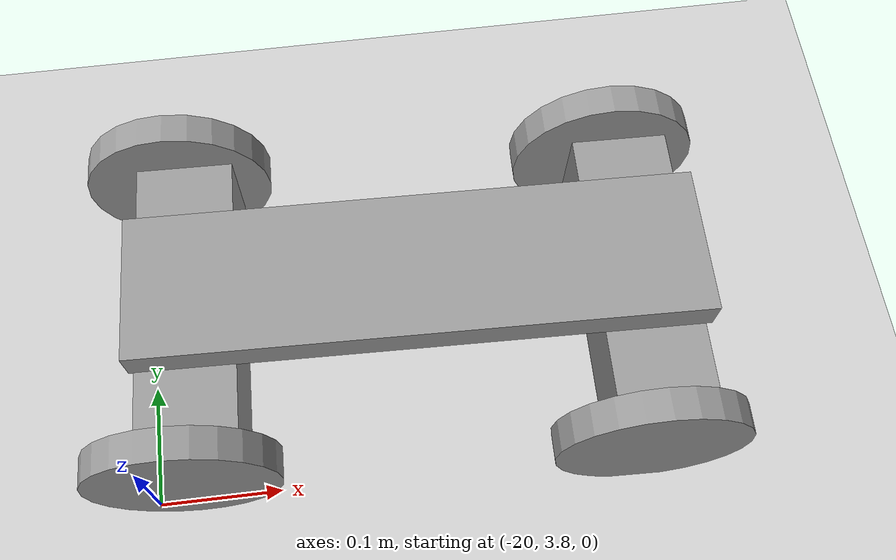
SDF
<sdf version="1.6">
 <world name="default">
  <model name="ground_plane">
   <static>1</static>
   <link name="link">
    <collision name="collision">
     <geometry><plane><normal>0 0 1</normal><size>100 100</size></plane></geometry>
     <surface><friction><ode><mu>100</mu><mu2>50</mu2></ode></friction></surface>
    </collision>
    <visual name="visual">
     <cast_shadows>0</cast_shadows>
     <geometry><plane><normal>0 0 1</normal><size>100 100</size></plane></geometry>
     <material>
      <script><uri>file://media/materials/scripts/gazebo.material</uri><name>Gazebo/Grey</name></script>
     </material>
    </visual>
   </link>
  </model>
  <model name="simple4wheel">
   <link name="link_0">
    <pose>0.207024 -0.003796 0.091671 0 -0 0</pose>
    <inertial>
     <mass>2</mass>
     <inertia>
      <ixx>1.72e-06</ixx>
      <ixy>0</ixy>
      <ixz>0</ixz>
      <iyy>2.368e-05</iyy>
      <iyz>0</iyz>
      <izz>2.522e-05</izz>
     </inertia>
    </inertial>
    <visual name="visual">
     <geometry><box><size>0.444653 0.117044 0.027544</size></box></geometry>
     <material>
      <lighting>1</lighting>
      <script><uri>file://media/materials/scripts/gazebo.material</uri><name>Gazebo/Grey</name></script>
      <ambient>0.3 0.3 0.3 1</ambient>
      <diffuse>0.7 0.7 0.7 1</diffuse>
      <specular>0.01 0.01 0.01 1</specular>
      <emissive>0 0 0 1</emissive>
      <shader type="vertex"><normal_map>__default__</normal_map></shader>
     </material>
    </visual>
    <collision name="collision">
     <geometry><box><size>0.444653 0.117044 0.027544</size></box></geometry>
     <surface>
      <friction>
       <ode><mu>1</mu><mu2>1</mu2><fdir1>0 0 0</fdir1><slip1>0</slip1><slip2>0</slip2></ode>
       <torsional>
        <coefficient>1</coefficient>
        <patch_radius>0</patch_radius>
        <surface_radius>0</surface_radius>
        <use_patch_radius>1</use_patch_radius>
        <ode><slip>0</slip></ode>
       </torsional>
      </friction>
      <bounce><restitution_coefficient>0</restitution_coefficient><threshold>1e+06</threshold></bounce>
      <contact>
       <collide_without_contact>0</collide_without_contact>
       <collide_without_contact_bitmask>1</collide_without_contact_bitmask>
       <collide_bitmask>1</collide_bitmask>
       <ode>
        <soft_cfm>0</soft_cfm>
        <soft_erp>0.2</soft_erp>
        <kp>1e+13</kp>
        <kd>1</kd>
        <max_vel>0.01</max_vel>
        <min_depth>0</min_depth>
       </ode>
       <bullet>
        <split_impulse>1</split_impulse>
        <split_impulse_penetration_threshold>-0.01</split_impulse_penetration_threshold>
        <soft_cfm>0</soft_cfm>
        <soft_erp>0.2</soft_erp>
        <kp>1e+13</kp>
        <kd>1</kd>
       </bullet>
      </contact>
     </surface>
    </collision>
   </link>
   <link name="link_1">
    <pose>0.382337 -0.003413 0.072755 0 -0 0</pose>
    <inertial>
     <mass>6.39095e-05</mass>
     <inertia>
      <ixx>2.5196e-08</ixx>
      <ixy>0</ixy>
      <ixz>0</ixz>
      <iyy>2.5196e-08</iyy>
      <iyz>0</iyz>
      <izz>4.92471e-08</izz>
     </inertia>
    </inertial>
    <visual name="visual">
     <geometry><cylinder><radius>0.0392577</radius><length>0.0103325</length></cylinder></geometry>
     <material>
      <lighting>1</lighting>
      <script><uri>file://media/materials/scripts/gazebo.material</uri><name>Gazebo/Grey</name></script>
      <ambient>0.3 0.3 0.3 1</ambient>
      <diffuse>0.7 0.7 0.7 1</diffuse>
      <specular>0.01 0.01 0.01 1</specular>
      <emissive>0 0 0 1</emissive>
     </material>
    </visual>
    <collision name="collision">
     <geometry><cylinder><radius>0.039258</radius><length>0.010332</length></cylinder></geometry>
     <surface>
      <friction>
       <ode><mu>1</mu><mu2>1</mu2><fdir1>0 0 0</fdir1><slip1>0</slip1><slip2>0</slip2></ode>
       <torsional>
        <coefficient>1</coefficient>
        <patch_radius>0</patch_radius>
        <surface_radius>0</surface_radius>
        <use_patch_radius>1</use_patch_radius>
        <ode><slip>0</slip></ode>
       </torsional>
      </friction>
      <bounce><restitution_coefficient>0</restitution_coefficient><threshold>1e+06</threshold></bounce>
      <contact>
       <collide_without_contact>0</collide_without_contact>
       <collide_without_contact_bitmask>1</collide_without_contact_bitmask>
       <collide_bitmask>1</collide_bitmask>
       <ode>
        <soft_cfm>0</soft_cfm>
        <soft_erp>0.2</soft_erp>
        <kp>1e+13</kp>
        <kd>1</kd>
        <max_vel>0.01</max_vel>
        <min_depth>0</min_depth>
       </ode>
       <bullet>
        <split_impulse>1</split_impulse>
        <split_impulse_penetration_threshold>-0.01</split_impulse_penetration_threshold>
        <soft_cfm>0</soft_cfm>
        <soft_erp>0.2</soft_erp>
        <kp>1e+13</kp>
        <kd>1</kd>
       </bullet>
      </contact>
     </surface>
    </collision>
   </link>
   <model name="wheel">
    <link name="link_1_clone">
     <pose>0.977304 -0.011272 0.197727 0 -0 0</pose>
     <inertial>
      <mass>0.665497</mass>
      <inertia>
       <ixx>0.00328415</ixx>
       <ixy>0</ixy>
       <ixz>0</ixz>
       <iyy>0.00382362</iyy>
       <iyz>0</iyz>
       <izz>0.00114194</izz>
      </inertia>
     </inertial>
     <visual name="visual">
      <geometry><box><size>0.077886 0.233056 0.073342</size></box></geometry>
      <material>
       <lighting>1</lighting>
       <script><uri>file://media/materials/scripts/gazebo.material</uri><name>Gazebo/Grey</name></script>
       <ambient>0.3 0.3 0.3 1</ambient>
       <diffuse>0.7 0.7 0.7 1</diffuse>
       <specular>0.01 0.01 0.01 1</specular>
       <emissive>0 0 0 1</emissive>
       <shader type="vertex"><normal_map>__default__</normal_map></shader>
      </material>
     </visual>
     <collision name="collision">
      <geometry><box><size>0.077886 0.233056 0.073342</size></box></geometry>
      <surface>
       <friction>
        <ode><mu>1</mu><mu2>1</mu2><fdir1>0 0 0</fdir1><slip1>0</slip1><slip2>0</slip2></ode>
        <torsional>
         <coefficient>1</coefficient>
         <patch_radius>0</patch_radius>
         <surface_radius>0</surface_radius>
         <use_patch_radius>1</use_patch_radius>
         <ode><slip>0</slip></ode>
        </torsional>
       </friction>
       <bounce><restitution_coefficient>0</restitution_coefficient><threshold>1e+06</threshold></bounce>
       <contact>
        <collide_without_contact>0</collide_without_contact>
        <collide_without_contact_bitmask>1</collide_without_contact_bitmask>
        <collide_bitmask>1</collide_bitmask>
        <ode>
         <soft_cfm>0</soft_cfm>
         <soft_erp>0.2</soft_erp>
         <kp>1e+13</kp>
         <kd>1</kd>
         <max_vel>0.01</max_vel>
         <min_depth>0</min_depth>
        </ode>
        <bullet>
         <split_impulse>1</split_impulse>
         <split_impulse_penetration_threshold>-0.01</split_impulse_penetration_threshold>
         <soft_cfm>0</soft_cfm>
         <soft_erp>0.2</soft_erp>
         <kp>1e+13</kp>
         <kd>1</kd>
        </bullet>
       </contact>
      </surface>
     </collision>
    </link>
    <link name="link_2_clone_0">
     <pose>0.96771 0.116414 0.19965 -1.5707 -0 -0</pose>
     <inertial>
      <mass>0.113164</mass>
      <inertia>
       <ixx>0.00447943</ixx>
       <ixy>0</ixy>
       <ixz>0</ixz>
       <iyy>0.00447943</iyy>
       <iyz>0</iyz>
       <izz>0.00824855</izz>
      </inertia>
     </inertial>
     <visual name="visual">
      <geometry><cylinder><radius>0.0763658</radius><length>0.0244675</length></cylinder></geometry>
      <material>
       <lighting>1</lighting>
       <script><uri>file://media/materials/scripts/gazebo.material</uri><name>Gazebo/Grey</name></script>
       <ambient>0.3 0.3 0.3 1</ambient>
       <diffuse>0.7 0.7 0.7 1</diffuse>
       <specular>0.01 0.01 0.01 1</specular>
       <emissive>0 0 0 1</emissive>
       <shader type="vertex"><normal_map>__default__</normal_map></shader>
      </material>
     </visual>
     <collision name="collision">
      <geometry><cylinder><radius>0.076366</radius><length>0.024468</length></cylinder></geometry>
      <surface>
       <friction>
        <ode><mu>1</mu><mu2>1</mu2><fdir1>0 0 0</fdir1><slip1>0</slip1><slip2>0</slip2></ode>
        <torsional>
         <coefficient>1</coefficient>
         <patch_radius>0</patch_radius>
         <surface_radius>0</surface_radius>
         <use_patch_radius>1</use_patch_radius>
         <ode><slip>0</slip></ode>
        </torsional>
       </friction>
       <bounce><restitution_coefficient>0</restitution_coefficient><threshold>1e+06</threshold></bounce>
       <contact>
        <collide_without_contact>0</collide_without_contact>
        <collide_without_contact_bitmask>1</collide_without_contact_bitmask>
        <collide_bitmask>1</collide_bitmask>
        <ode>
         <soft_cfm>0</soft_cfm>
         <soft_erp>0.2</soft_erp>
         <kp>1e+13</kp>
         <kd>1</kd>
         <max_vel>0.01</max_vel>
         <min_depth>0</min_depth>
        </ode>
        <bullet>
         <split_impulse>1</split_impulse>
         <split_impulse_penetration_threshold>-0.01</split_impulse_penetration_threshold>
         <soft_cfm>0</soft_cfm>
         <soft_erp>0.2</soft_erp>
         <kp>1e+13</kp>
         <kd>1</kd>
        </bullet>
       </contact>
      </surface>
     </collision>
    </link>
    <link name="link_2_clone_clone">
     <pose>0.967654 -0.140179 0.196376 1.5707 -0 0</pose>
     <inertial>
      <mass>0.147919</mass>
      <inertia>
       <ixx>0.00627331</ixx>
       <ixy>0</ixy>
       <ixz>0</ixz>
       <iyy>0.00627331</iyy>
       <iyz>0</iyz>
       <izz>0.0110311</izz>
      </inertia>
     </inertial>
     <visual name="visual">
      <geometry><cylinder><radius>0.076366</radius><length>0.024779</length></cylinder></geometry>
      <material>
       <lighting>1</lighting>
       <script><uri>file://media/materials/scripts/gazebo.material</uri><name>Gazebo/Grey</name></script>
       <ambient>0.3 0.3 0.3 1</ambient>
       <diffuse>0.7 0.7 0.7 1</diffuse>
       <specular>0.01 0.01 0.01 1</specular>
       <emissive>0 0 0 1</emissive>
       <shader type="vertex"><normal_map>__default__</normal_map></shader>
      </material>
     </visual>
     <collision name="collision">
      <geometry><cylinder><radius>0.076366</radius><length>0.024779</length></cylinder></geometry>
      <surface>
       <friction>
        <ode><mu>1</mu><mu2>1</mu2><fdir1>0 0 0</fdir1><slip1>0</slip1><slip2>0</slip2></ode>
        <torsional>
         <coefficient>1</coefficient>
         <patch_radius>0</patch_radius>
         <surface_radius>0</surface_radius>
         <use_patch_radius>1</use_patch_radius>
         <ode><slip>0</slip></ode>
        </torsional>
       </friction>
       <bounce><restitution_coefficient>0</restitution_coefficient><threshold>1e+06</threshold></bounce>
       <contact>
        <collide_without_contact>0</collide_without_contact>
        <collide_without_contact_bitmask>1</collide_without_contact_bitmask>
        <collide_bitmask>1</collide_bitmask>
        <ode>
         <soft_cfm>0</soft_cfm>
         <soft_erp>0.2</soft_erp>
         <kp>1e+13</kp>
         <kd>1</kd>
         <max_vel>0.01</max_vel>
         <min_depth>0</min_depth>
        </ode>
        <bullet>
         <split_impulse>1</split_impulse>
         <split_impulse_penetration_threshold>-0.01</split_impulse_penetration_threshold>
         <soft_cfm>0</soft_cfm>
         <soft_erp>0.2</soft_erp>
         <kp>1e+13</kp>
         <kd>1</kd>
        </bullet>
       </contact>
      </surface>
     </collision>
    </link>
    <joint name="link_1_clone_JOINT_14" type="revolute">
     <parent>link_1_clone</parent>
     <child>link_2_clone_clone</child>
     <axis>
      <xyz>0 0 1</xyz>
      <use_parent_model_frame>0</use_parent_model_frame>
      <limit>
       <lower>-1.79769e+308</lower>
       <upper>1.79769e+308</upper>
       <effort>-1</effort>
       <velocity>-1</velocity>
      </limit>
      <dynamics>
       <spring_reference>0</spring_reference>
       <spring_stiffness>0</spring_stiffness>
       <damping>0</damping>
       <friction>0</friction>
      </dynamics>
     </axis>
     <physics>
      <ode><limit><cfm>0</cfm><erp>0.2</erp></limit><suspension><cfm>0</cfm><erp>0.2</erp></suspension></ode>
     </physics>
    </joint>
    <joint name="link_1_clone_JOINT_15" type="revolute">
     <parent>link_1_clone</parent>
     <child>link_2_clone_0</child>
     <axis>
      <xyz>0 0 1</xyz>
      <use_parent_model_frame>0</use_parent_model_frame>
      <limit>
       <lower>-1.79769e+308</lower>
       <upper>1.79769e+308</upper>
       <effort>-1</effort>
       <velocity>-1</velocity>
      </limit>
      <dynamics>
       <spring_reference>0</spring_reference>
       <spring_stiffness>0</spring_stiffness>
       <damping>0</damping>
       <friction>0</friction>
      </dynamics>
     </axis>
     <physics>
      <ode><limit><cfm>0</cfm><erp>0.2</erp></limit><suspension><cfm>0</cfm><erp>0.2</erp></suspension></ode>
     </physics>
    </joint>
    <static>0</static>
    <pose>-0.589361 0.007286 -0.163823 0 -0 0</pose>
   </model>
   <model name="wheel_0">
    <link name="link_1_clone">
     <pose>0.977304 -0.011272 0.197727 0 -0 0</pose>
     <inertial>
      <mass>0.665497</mass>
      <inertia>
       <ixx>0.00328415</ixx>
       <ixy>0</ixy>
       <ixz>0</ixz>
       <iyy>0.00382362</iyy>
       <iyz>0</iyz>
       <izz>0.00114194</izz>
      </inertia>
     </inertial>
     <visual name="visual">
      <geometry><box><size>0.077886 0.233056 0.073342</size></box></geometry>
      <material>
       <lighting>1</lighting>
       <script><uri>file://media/materials/scripts/gazebo.material</uri><name>Gazebo/Grey</name></script>
       <ambient>0.3 0.3 0.3 1</ambient>
       <diffuse>0.7 0.7 0.7 1</diffuse>
       <specular>0.01 0.01 0.01 1</specular>
       <emissive>0 0 0 1</emissive>
       <shader type="vertex"><normal_map>__default__</normal_map></shader>
      </material>
     </visual>
     <collision name="collision">
      <geometry><box><size>0.077886 0.233056 0.073342</size></box></geometry>
      <surface>
       <friction>
        <ode><mu>1</mu><mu2>1</mu2><fdir1>0 0 0</fdir1><slip1>0</slip1><slip2>0</slip2></ode>
        <torsional>
         <coefficient>1</coefficient>
         <patch_radius>0</patch_radius>
         <surface_radius>0</surface_radius>
         <use_patch_radius>1</use_patch_radius>
         <ode><slip>0</slip></ode>
        </torsional>
       </friction>
       <bounce><restitution_coefficient>0</restitution_coefficient><threshold>1e+06</threshold></bounce>
       <contact>
        <collide_without_contact>0</collide_without_contact>
        <collide_without_contact_bitmask>1</collide_without_contact_bitmask>
        <collide_bitmask>1</collide_bitmask>
        <ode>
         <soft_cfm>0</soft_cfm>
         <soft_erp>0.2</soft_erp>
         <kp>1e+13</kp>
         <kd>1</kd>
         <max_vel>0.01</max_vel>
         <min_depth>0</min_depth>
        </ode>
        <bullet>
         <split_impulse>1</split_impulse>
         <split_impulse_penetration_threshold>-0.01</split_impulse_penetration_threshold>
         <soft_cfm>0</soft_cfm>
         <soft_erp>0.2</soft_erp>
         <kp>1e+13</kp>
         <kd>1</kd>
        </bullet>
       </contact>
      </surface>
     </collision>
    </link>
    <link name="link_2_clone_0">
     <pose>0.96771 0.116414 0.19965 -1.5707 -0 -0</pose>
     <inertial>
      <mass>0.113164</mass>
      <inertia>
       <ixx>0.00447943</ixx>
       <ixy>0</ixy>
       <ixz>0</ixz>
       <iyy>0.00447943</iyy>
       <iyz>0</iyz>
       <izz>0.00824855</izz>
      </inertia>
     </inertial>
     <visual name="visual">
      <geometry><cylinder><radius>0.0763658</radius><length>0.0244675</length></cylinder></geometry>
      <material>
       <lighting>1</lighting>
       <script><uri>file://media/materials/scripts/gazebo.material</uri><name>Gazebo/Grey</name></script>
       <ambient>0.3 0.3 0.3 1</ambient>
       <diffuse>0.7 0.7 0.7 1</diffuse>
       <specular>0.01 0.01 0.01 1</specular>
       <emissive>0 0 0 1</emissive>
       <shader type="vertex"><normal_map>__default__</normal_map></shader>
      </material>
     </visual>
     <collision name="collision">
      <geometry><cylinder><radius>0.076366</radius><length>0.024468</length></cylinder></geometry>
      <surface>
       <friction>
        <ode><mu>1</mu><mu2>1</mu2><fdir1>0 0 0</fdir1><slip1>0</slip1><slip2>0</slip2></ode>
        <torsional>
         <coefficient>1</coefficient>
         <patch_radius>0</patch_radius>
         <surface_radius>0</surface_radius>
         <use_patch_radius>1</use_patch_radius>
         <ode><slip>0</slip></ode>
        </torsional>
       </friction>
       <bounce><restitution_coefficient>0</restitution_coefficient><threshold>1e+06</threshold></bounce>
       <contact>
        <collide_without_contact>0</collide_without_contact>
        <collide_without_contact_bitmask>1</collide_without_contact_bitmask>
        <collide_bitmask>1</collide_bitmask>
        <ode>
         <soft_cfm>0</soft_cfm>
         <soft_erp>0.2</soft_erp>
         <kp>1e+13</kp>
         <kd>1</kd>
         <max_vel>0.01</max_vel>
         <min_depth>0</min_depth>
        </ode>
        <bullet>
         <split_impulse>1</split_impulse>
         <split_impulse_penetration_threshold>-0.01</split_impulse_penetration_threshold>
         <soft_cfm>0</soft_cfm>
         <soft_erp>0.2</soft_erp>
         <kp>1e+13</kp>
         <kd>1</kd>
        </bullet>
       </contact>
      </surface>
     </collision>
    </link>
    <link name="link_2_clone_clone">
     <pose>0.967654 -0.140179 0.196376 1.5707 -0 0</pose>
     <inertial>
      <mass>0.147919</mass>
      <inertia>
       <ixx>0.00627331</ixx>
       <ixy>0</ixy>
       <ixz>0</ixz>
       <iyy>0.00627331</iyy>
       <iyz>0</iyz>
       <izz>0.0110311</izz>
      </inertia>
     </inertial>
     <visual name="visual">
      <geometry><cylinder><radius>0.076366</radius><length>0.024779</length></cylinder></geometry>
      <material>
       <lighting>1</lighting>
       <script><uri>file://media/materials/scripts/gazebo.material</uri><name>Gazebo/Grey</name></script>
       <ambient>0.3 0.3 0.3 1</ambient>
       <diffuse>0.7 0.7 0.7 1</diffuse>
       <specular>0.01 0.01 0.01 1</specular>
       <emissive>0 0 0 1</emissive>
       <shader type="vertex"><normal_map>__default__</normal_map></shader>
      </material>
     </visual>
     <collision name="collision">
      <geometry><cylinder><radius>0.076366</radius><length>0.024779</length></cylinder></geometry>
      <surface>
       <friction>
        <ode><mu>1</mu><mu2>1</mu2><fdir1>0 0 0</fdir1><slip1>0</slip1><slip2>0</slip2></ode>
        <torsional>
         <coefficient>1</coefficient>
         <patch_radius>0</patch_radius>
         <surface_radius>0</surface_radius>
         <use_patch_radius>1</use_patch_radius>
         <ode><slip>0</slip></ode>
        </torsional>
       </friction>
       <bounce><restitution_coefficient>0</restitution_coefficient><threshold>1e+06</threshold></bounce>
       <contact>
        <collide_without_contact>0</collide_without_contact>
        <collide_without_contact_bitmask>1</collide_without_contact_bitmask>
        <collide_bitmask>1</collide_bitmask>
        <ode>
         <soft_cfm>0</soft_cfm>
         <soft_erp>0.2</soft_erp>
         <kp>1e+13</kp>
         <kd>1</kd>
         <max_vel>0.01</max_vel>
         <min_depth>0</min_depth>
        </ode>
        <bullet>
         <split_impulse>1</split_impulse>
         <split_impulse_penetration_threshold>-0.01</split_impulse_penetration_threshold>
         <soft_cfm>0</soft_cfm>
         <soft_erp>0.2</soft_erp>
         <kp>1e+13</kp>
         <kd>1</kd>
        </bullet>
       </contact>
      </surface>
     </collision>
    </link>
    <joint name="link_1_clone_JOINT_14" type="revolute">
     <parent>link_1_clone</parent>
     <child>link_2_clone_clone</child>
     <axis>
      <xyz>0 0 1</xyz>
      <use_parent_model_frame>0</use_parent_model_frame>
      <limit>
       <lower>-1.79769e+308</lower>
       <upper>1.79769e+308</upper>
       <effort>-1</effort>
       <velocity>-1</velocity>
      </limit>
      <dynamics>
       <spring_reference>0</spring_reference>
       <spring_stiffness>0</spring_stiffness>
       <damping>0</damping>
       <friction>0</friction>
      </dynamics>
     </axis>
     <physics>
      <ode><limit><cfm>0</cfm><erp>0.2</erp></limit><suspension><cfm>0</cfm><erp>0.2</erp></suspension></ode>
     </physics>
    </joint>
    <joint name="link_1_clone_JOINT_15" type="revolute">
     <parent>link_1_clone</parent>
     <child>link_2_clone_0</child>
     <axis>
      <xyz>0 0 1</xyz>
      <use_parent_model_frame>0</use_parent_model_frame>
      <limit>
       <lower>-1.79769e+308</lower>
       <upper>1.79769e+308</upper>
       <effort>-1</effort>
       <velocity>-1</velocity>
      </limit>
      <dynamics>
       <spring_reference>0</spring_reference>
       <spring_stiffness>0</spring_stiffness>
       <damping>0</damping>
       <friction>0</friction>
      </dynamics>
     </axis>
     <physics>
      <ode><limit><cfm>0</cfm><erp>0.2</erp></limit><suspension><cfm>0</cfm><erp>0.2</erp></suspension></ode>
     </physics>
    </joint>
    <static>0</static>
    <pose>-0.949919 0.008977 -0.15558 0 -0 0</pose>
   </model>
   <joint name="link_0_JOINT_1" type="revolute">
    <parent>link_0</parent>
    <child>link_1</child>
    <axis>
     <xyz>0 0 -1</xyz>
     <use_parent_model_frame>0</use_parent_model_frame>
     <limit>
      <lower>-1.79769e+308</lower>
      <upper>1.79769e+308</upper>
      <effort>-1</effort>
      <velocity>-1</velocity>
     </limit>
     <dynamics>
      <spring_reference>0</spring_reference>
      <spring_stiffness>0</spring_stiffness>
      <damping>0</damping>
      <friction>0</friction>
     </dynamics>
    </axis>
    <physics>
     <ode><limit><cfm>0</cfm><erp>0.2</erp></limit><suspension><cfm>0</cfm><erp>0.2</erp></suspension></ode>
    </physics>
   </joint>
   <joint name="link_0_JOINT_2" type="fixed">
    <parent>link_0</parent>
    <child>wheel_0::link_1_clone</child>
    <physics>
     <ode><limit><cfm>0</cfm><erp>0.2</erp></limit><suspension><cfm>0</cfm><erp>0.2</erp></suspension></ode>
    </physics>
   </joint>
   <joint name="link_1_clone_JOINT_0" type="fixed">
    <parent>wheel::link_1_clone</parent>
    <child>link_1</child>
    <physics>
     <ode><limit><cfm>0</cfm><erp>0.2</erp></limit><suspension><cfm>0</cfm><erp>0.2</erp></suspension></ode>
    </physics>
   </joint>
   <static>0</static>
   <pose>-19.9807 3.93676 0.032997 -0.012155 -0.013656 -0.033941</pose>
  </model>
 </world>
</sdf>
